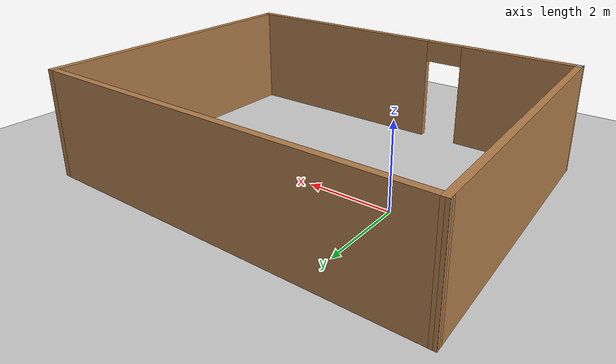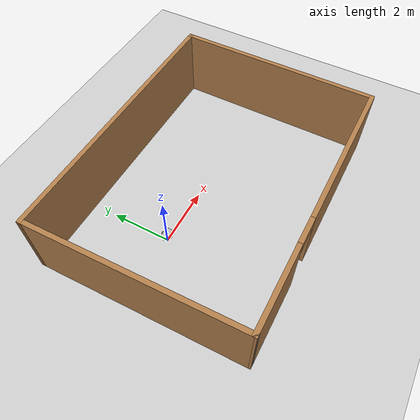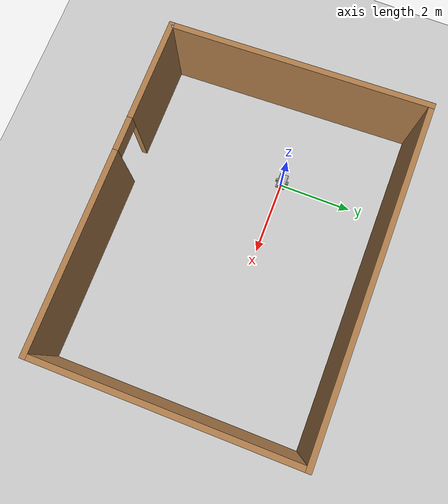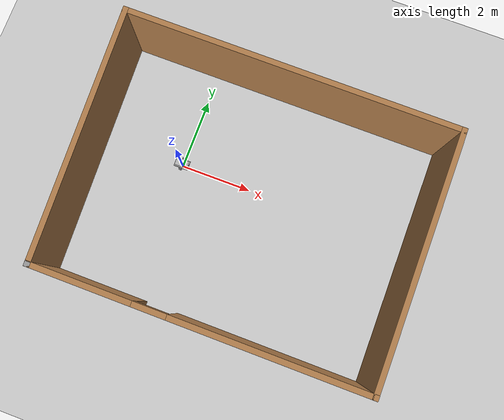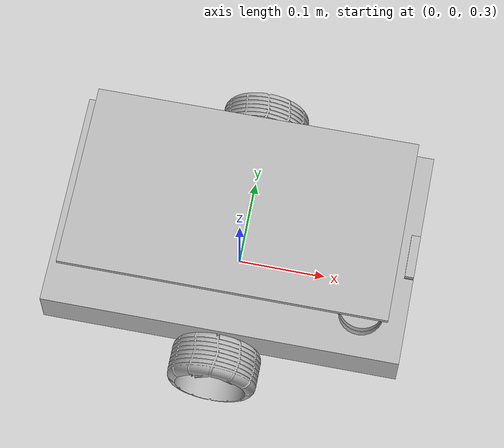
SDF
<?xml version="1.0" ?>
<sdf version="1.8">
  <world name="demo">
    <plugin
      filename="ignition-gazebo-physics-system"
      name="ignition::gazebo::systems::Physics">
    </plugin>
    <plugin
      filename="ignition-gazebo-sensors-system"
      name="ignition::gazebo::systems::Sensors">
      <render_engine>ogre2</render_engine>
    </plugin>

    <plugin
      filename="ignition-gazebo-scene-broadcaster-system"
      name="ignition::gazebo::systems::SceneBroadcaster">
    </plugin>
    <plugin
      filename="ignition-gazebo-user-commands-system"
      name="ignition::gazebo::systems::UserCommands">
    </plugin>
    <plugin
      filename="BasicSystem"
      name="ros_gz_example_gazebo::BasicSystem">
    </plugin>
    <plugin
      filename="FullSystem"
      name="ros_gz_example_gazebo::FullSystem">
    </plugin>

    <light name="sun" type="directional">
      <cast_shadows>true</cast_shadows>
      <pose>0 0 10 0 0 0</pose>
      <diffuse>0.8 0.8 0.8 1</diffuse>
      <specular>0.2 0.2 0.2 1</specular>
      <attenuation>
        <range>1000</range>
        <constant>0.9</constant>
        <linear>0.01</linear>
        <quadratic>0.001</quadratic>
      </attenuation>
      <direction>-0.5 0.1 -0.9</direction>
    </light>

    <model name="ground_plane">
      <static>true</static>
      <link name="link">
        <collision name="collision">
          <geometry>
            <plane>
              <normal>0 0 1</normal>
              <size>100 100</size>
            </plane>
          </geometry>
        </collision>
        <visual name="visual">
          <geometry>
            <plane>
              <normal>0 0 1</normal>
              <size>100 100</size>
            </plane>
          </geometry>
          <material>
            <ambient>0.8 0.8 0.8 1</ambient>
            <diffuse>0.8 0.8 0.8 1</diffuse>
            <specular>0.8 0.8 0.8 1</specular>
          </material>
        </visual>
      </link>
    </model>

    <model name="load_250_v33">
      <self_collide>true</self_collide>
      <pose>0 0 0.35 0 0 0</pose>
      <include merge="true">
        <uri>package://load_250_description/models/load_250</uri>
      </include>

      <plugin
        filename="ignition-gazebo-joint-state-publisher-system"
        name="ignition::gazebo::systems::JointStatePublisher">
      </plugin>

      <plugin
        filename="ignition-gazebo-pose-publisher-system"
        name="ignition::gazebo::systems::PosePublisher">
        <publish_link_pose>true</publish_link_pose>
        <use_pose_vector_msg>true</use_pose_vector_msg>
        <static_publisher>true</static_publisher>
        <static_update_frequency>1</static_update_frequency>
      </plugin>

      <plugin
        filename="ignition-gazebo-odometry-publisher-system"
        name="ignition::gazebo::systems::OdometryPublisher">
        <odom_frame>load_250_v33/odom</odom_frame>
        <robot_base_frame>load_250_v33</robot_base_frame>
      </plugin>
    </model>

  <model name="square">
    <pose>2.06866 -0.545 0 0 -0 0</pose>
    <link name='Wall_0'>
      <pose>0.126343 -3.425 0 0 -0 0</pose>
      <visual name='Wall_0_Visual_0'>
        <pose>-3.11467 0 1.25 0 -0 0</pose>
        <geometry>
          <box>
            <size>2.77067 0.15 2.5</size>
          </box>
        </geometry>
        <material>
          <script>
            <uri>file://media/materials/scripts/gazebo.material</uri>
            <name>Gazebo/Wood</name>
          </script>
          <ambient>1 1 1 1</ambient>
        </material>
        <meta>
          <layer>0</layer>
        </meta>
      </visual>
      <collision name='Wall_0_Collision_0'>
        <geometry>
          <box>
            <size>2.77067 0.15 2.5</size>
          </box>
        </geometry>
        <pose>-3.11467 0 1.25 0 -0 0</pose>
      </collision>
      <visual name='Wall_0_Visual_1'>
        <pose>1.83533 0 1.25 0 -0 0</pose>
        <geometry>
          <box>
            <size>5.32933 0.15 2.5</size>
          </box>
        </geometry>
        <material>
          <script>
            <uri>file://media/materials/scripts/gazebo.material</uri>
            <name>Gazebo/Wood</name>
          </script>
          <ambient>1 1 1 1</ambient>
        </material>
        <meta>
          <layer>0</layer>
        </meta>
      </visual>
      <collision name='Wall_0_Collision_1'>
        <geometry>
          <box>
            <size>5.32933 0.15 2.5</size>
          </box>
        </geometry>
        <pose>1.83533 0 1.25 0 -0 0</pose>
      </collision>
      <visual name='Wall_0_Visual_2'>
        <pose>-1.27933 0 2.25 0 -0 0</pose>
        <geometry>
          <box>
            <size>0.9 0.15 0.5</size>
          </box>
        </geometry>
        <material>
          <script>
            <uri>file://media/materials/scripts/gazebo.material</uri>
            <name>Gazebo/Wood</name>
          </script>
          <ambient>1 1 1 1</ambient>
        </material>
        <meta>
          <layer>0</layer>
        </meta>
      </visual>
      <collision name='Wall_0_Collision_2'>
        <geometry>
          <box>
            <size>0.9 0.15 0.5</size>
          </box>
        </geometry>
        <pose>-1.27933 0 2.25 0 -0 0</pose>
      </collision>
    </link>
    <link name='Wall_4'>
      <collision name='Wall_4_Collision'>
        <geometry>
          <box>
            <size>7 0.15 2.5</size>
          </box>
        </geometry>
        <pose>0 0 1.25 0 -0 0</pose>
      </collision>
      <visual name='Wall_4_Visual'>
        <pose>0 0 1.25 0 -0 0</pose>
        <geometry>
          <box>
            <size>7 0.15 2.5</size>
          </box>
        </geometry>
        <material>
          <script>
            <uri>file://media/materials/scripts/gazebo.material</uri>
            <name>Gazebo/Wood</name>
          </script>
          <ambient>1 1 1 1</ambient>
        </material>
        <meta>
          <layer>0</layer>
        </meta>
      </visual>
      <pose>4.55134 0 0 0 -0 1.5708</pose>
    </link>
    <link name='Wall_5'>
      <collision name='Wall_5_Collision'>
        <geometry>
          <box>
            <size>9.25 0.15 2.5</size>
          </box>
        </geometry>
        <pose>0 0 1.25 0 -0 0</pose>
      </collision>
      <visual name='Wall_5_Visual'>
        <pose>0 0 1.25 0 -0 0</pose>
        <geometry>
          <box>
            <size>9.25 0.15 2.5</size>
          </box>
        </geometry>
        <material>
          <script>
            <uri>file://media/materials/scripts/gazebo.material</uri>
            <name>Gazebo/Wood</name>
          </script>
          <ambient>1 1 1 1</ambient>
        </material>
        <meta>
          <layer>0</layer>
        </meta>
      </visual>
      <pose>0.001343 3.425 0 0 -0 3.14159</pose>
    </link>
    <link name='Wall_6'>
      <collision name='Wall_6_Collision'>
        <geometry>
          <box>
            <size>7.00456 0.15 2.5</size>
          </box>
        </geometry>
        <pose>0 0 1.25 0 -0 0</pose>
      </collision>
      <visual name='Wall_6_Visual'>
        <pose>0 0 1.25 0 -0 0</pose>
        <geometry>
          <box>
            <size>7.00456 0.15 2.5</size>
          </box>
        </geometry>
        <material>
          <script>
            <uri>file://media/materials/scripts/gazebo.material</uri>
            <name>Gazebo/Wood</name>
          </script>
          <ambient>1 0.764706 0.305882 1</ambient>
        </material>
        <meta>
          <layer>0</layer>
        </meta>
      </visual>
      <pose>-4.42366 0 0 0 -0 -1.53432</pose>
    </link>
    <link name='Wall_7'>
      <collision name='Wall_7_Collision'>
        <geometry>
          <box>
            <size>0.15 0.15 2.5</size>
          </box>
        </geometry>
        <pose>0 0 1.25 0 -0 0</pose>
      </collision>
      <visual name='Wall_7_Visual'>
        <pose>0 0 1.25 0 -0 0</pose>
        <geometry>
          <box>
            <size>0.15 0.15 2.5</size>
          </box>
        </geometry>
        <material>
          <script>
            <uri>file://media/materials/scripts/gazebo.material</uri>
            <name>Gazebo/Grey</name>
          </script>
          <ambient>1 1 1 1</ambient>
        </material>
        <meta>
          <layer>0</layer>
        </meta>
      </visual>
      <pose>-4.29866 -3.425 0 0 -0 0</pose>
    </link>
    <static>1</static>
  </model>
  </world>
</sdf>

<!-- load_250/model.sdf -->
<sdf version="1.9">
  <model name="load_250_v33">
    <link name="base_link">
      <inertial>
        <mass>0.0001</mass>
        <inertia>
          <ixx>1e-09</ixx>
          <ixy>0</ixy>
          <ixz>0</ixz>
          <iyy>1e-09</iyy>
          <iyz>0</iyz>
          <izz>1e-09</izz>
        </inertia>
      </inertial>
    </link>

    <link name="froller_1">
      <pose relative_to="__model__">0.175 0.0 -0.03 0.0 -0.0 0.0</pose>
      <inertial>
        <mass>0.2630560248605853</mass>
        <inertia>
          <ixx>4.20889639776937e-05</ixx>
          <ixy>0.0</ixy>
          <ixz>2.168404344971009e-19</ixz>
          <iyy>4.20889639776937e-05</iyy>
          <iyz>0.0</iyz>
          <izz>4.20889639776937e-05</izz>
        </inertia>
      </inertial>
      <visual name="froller_1__froller_visual">
        <geometry>
          <mesh>
            <scale>0.01 0.01 0.01</scale>
            <uri>meshes/froller_1/froller_visual.obj</uri>
          </mesh>
        </geometry>
      </visual>
      <collision name="froller_1__froller_collision">
        <pose relative_to="__model__">0.175 0.0 -0.03 -0.0 -1.5707963267948966 0</pose>
        <geometry>
          <sphere>
            <radius>0.02</radius>
          </sphere>
        </geometry>
        <surface>
          <friction>
            <torsional>
              <coefficient>0.0</coefficient>
            </torsional>
            <ode>
              <mu>0.0</mu>
              <mu2>0.0</mu2>
            </ode>
            <bullet>
              <friction>0.0</friction>
              <friction2>0.0</friction2>
              <rolling_friction>0.0</rolling_friction>
            </bullet>
          </friction>
        </surface>
      </collision>
    </link>
    <link name="imu_1">
      <pose relative_to="__model__">0.0 0.0 0.025 0.0 -0.0 0.0</pose>
      <inertial>
        <pose>0.0 0.0 0.010000000000000002 0.0 -0.0 0.0</pose>
        <mass>0.2355</mass>
        <inertia>
          <ixx>2.551249999999995e-05</ixx>
          <ixy>0.0</ixy>
          <ixz>0.0</ixz>
          <iyy>5.6912499999999954e-05</iyy>
          <iyz>0.0</iyz>
          <izz>6.672499999999997e-05</izz>
        </inertia>
      </inertial>
      <visual name="imu_1__imu_visual">
        <geometry>
          <mesh>
            <scale>0.01 0.01 0.01</scale>
            <uri>meshes/imu_1/imu_visual.obj</uri>
          </mesh>
        </geometry>
      </visual>
      <collision name="imu_1__imu_collision">
        <pose relative_to="__model__">0.0 0.0 0.035 -0.0 -1.5707963267948966 0</pose>
        <geometry>
          <box>
            <size>0.02 0.03 0.05</size>
          </box>
        </geometry>
      </collision>
    </link>
    <link name="broller_1">
      <pose relative_to="__model__">-0.175 0.0 -0.03 0.0 -0.0 0.0</pose>
      <inertial>
        <mass>0.2630560248605853</mass>
        <inertia>
          <ixx>4.20889639776937e-05</ixx>
          <ixy>0.0</ixy>
          <ixz>-2.168404344971009e-19</ixz>
          <iyy>4.20889639776937e-05</iyy>
          <iyz>0.0</iyz>
          <izz>4.20889639776937e-05</izz>
        </inertia>
      </inertial>
      <visual name="broller_1__broller_visual">
        <geometry>
          <mesh>
            <scale>0.01 0.01 0.01</scale>
            <uri>meshes/broller_1/broller_visual.obj</uri>
          </mesh>
        </geometry>
      </visual>
      <collision name="broller_1__broller_collision">
        <pose relative_to="__model__">-0.175 0.0 -0.03 -0.0 -1.5707963267948966 0</pose>
        <geometry>
          <box>
            <size>0.04 0.04 0.04</size>
          </box>
        </geometry>
        <surface>
          <friction>
            <torsional>
              <coefficient>0.0</coefficient>
            </torsional>
            <ode>
              <mu>0.0</mu>
              <mu2>0.0</mu2>
            </ode>
            <bullet>
              <friction>0.0</friction>
              <friction2>0.0</friction2>
              <rolling_friction>0.0</rolling_friction>
            </bullet>
          </friction>
        </surface>
      </collision>
    </link>
    <link name="platform_1">
      <pose relative_to="__model__">0.0 0.0 0.055 0.0 -0.0 6.123233995736766e-17</pose>
      <inertial>
        <pose>1.8256230444553304e-11 0.0 0.039618976470643864 0.0 -0.0 -6.123233995736766e-17</pose>
        <mass>11.533219999999998</mass>
        <inertia>
          <ixx>0.024765548801522416</ixx>
          <ixy>1.684427072887525e-11</ixy>
          <ixz>-5.238784181586978e-12</ixz>
          <iyy>0.05554422130152241</iyy>
          <iyz>1.448607473321317e-10</iyz>
          <izz>0.06986293283333335</izz>
        </inertia>
      </inertial>
      <visual name="platform_1__platform_visual">
        <geometry>
          <mesh>
            <scale>0.01 0.01 0.01</scale>
            <uri>meshes/platform_1/platform_visual.obj</uri>
          </mesh>
        </geometry>
      </visual>
      <collision name="platform_1__platform_collision">
        <pose relative_to="__model__">0.0 0.0 0.08850000629013424 -0.0 -1.5707963267948966 0</pose>
        <geometry>
          <box>
            <size>0.06700001258026848 0.21000000000000005 0.360000025160537</size>
          </box>
        </geometry>
      </collision>
    </link>
    <link name="camera_1">
      <pose relative_to="__model__">0.195 0.0 0.05199999999999999 0.0 -0.0 0.0</pose>
      <inertial>
        <pose>0.0 0.0 0.0025000000000000022 0.0 -0.0 0.0</pose>
        <mass>0.019624999999999997</mass>
        <inertia>
          <ixx>4.129427083333333e-06</ixx>
          <ixy>0.0</ixy>
          <ixz>0.0</ixz>
          <iyy>2.0442708333317638e-07</iyy>
          <iyz>0.0</iyz>
          <izz>4.252083333333343e-06</izz>
        </inertia>
      </inertial>
      <visual name="camera_1__camera_visual">
        <geometry>
          <mesh>
            <scale>0.01 0.01 0.01</scale>
            <uri>meshes/camera_1/camera_visual.obj</uri>
          </mesh>
        </geometry>
      </visual>
      <collision name="camera_1__camera_collision">
        <pose relative_to="__model__">0.195 0.0 0.05449999999999999 -0.0 -1.5707963267948966 0</pose>
        <geometry>
          <box>
            <size>0.005 0.05 0.01</size>
          </box>
        </geometry>
      </collision>
    </link>
    <link name="rwheel_1">
      <pose relative_to="__model__">0.0 -0.145 0.0 0.0 -0.0 1.0145104319789719e-51</pose>
      <inertial>
        <pose>-3.872152868763962e-07 -0.0050002387848986085 -5.898795480966115e-06 0.0 -0.0 -1.0145104319789719e-51</pose>
        <mass>1.0452977986041356</mass>
        <inertia>
          <ixx>0.0011276214981046917</ixx>
          <ixy>-3.9380700690467983e-10</ixy>
          <ixz>6.493558753287392e-08</ixz>
          <iyy>0.0019158393483540905</iyy>
          <iyz>-5.260724932004131e-09</iyz>
          <izz>0.0011276094071435289</izz>
        </inertia>
      </inertial>
      <visual name="rwheel_1__rwheel_visual">
        <geometry>
          <mesh>
            <scale>0.01 0.01 0.01</scale>
            <uri>meshes/rwheel_1/rwheel_visual.obj</uri>
          </mesh>
        </geometry>
      </visual>
      <collision name="rwheel_1__rwheel_collision">
        <pose relative_to="__model__">0.0 -0.15 0.0 -0.0 -1.5707963267948966 0</pose>
        <geometry>
          <sphere>
            <radius>0.05</radius>
          </sphere>
        </geometry>
        <surface>
          <friction>
            <torsional>
              <coefficient>0.0</coefficient>
            </torsional>
            <ode>
              <mu>0.8</mu>
              <mu2>0.8</mu2>
            </ode>
            <bullet>
              <friction>0.8</friction>
              <friction2>0.8</friction2>
              <rolling_friction>0.01</rolling_friction>
            </bullet>
          </friction>
        </surface>
      </collision>
    </link>
    <link name="flidar_1">
      <pose relative_to="__model__">0.15 -0.075 0.06199999999999999 0.0 -0.0 0.0</pose>
      <inertial>
        <pose>2.7755575615628914e-17 -1.3877787807814457e-17 0.0049999999999999975 0.0 -0.0 0.0</pose>
        <mass>0.1541343895667492</mass>
        <inertia>
          <ixx>2.536795161619306e-05</ixx>
          <ixy>-2.168404344971009e-19</ixy>
          <ixz>4.336808689942018e-19</ixz>
          <iyy>2.536795161619306e-05</iyy>
          <iyz>0.0</iyz>
          <izz>4.816699673960718e-05</izz>
        </inertia>
      </inertial>
      <visual name="flidar_1__flidar_visual">
        <geometry>
          <mesh>
            <scale>0.01 0.01 0.01</scale>
            <uri>meshes/flidar_1/flidar_visual.obj</uri>
          </mesh>
        </geometry>
      </visual>
      <collision name="flidar_1__flidar_collision">
        <pose relative_to="__model__">0.15 -0.075 0.06699999999999999 -0.0 -1.5707963267948966 0</pose>
        <geometry>
          <box>
            <size>0.01 0.05 0.05</size>
          </box>
        </geometry>
      </collision>
      <sensor name='gpu_lidar_1' type='gpu_lidar'>
        <pose>0.0 0.0 0.06699999999999999 0.0 -0.0 0.0</pose>
        <topic>scan</topic>
        <ignition_frame_id>load_250_v33/flidar_1</ignition_frame_id>
        <update_rate>10</update_rate>
        <lidar>
          <scan>
            <horizontal>
              <samples>270</samples>
              <resolution>1</resolution>
              <min_angle>-3.0</min_angle>
              <max_angle>1.396263</max_angle>
            </horizontal>
            <vertical>
              <samples>1</samples>
              <resolution>1</resolution>
              <min_angle>0.0</min_angle>
              <max_angle>0.0</max_angle>
            </vertical>
          </scan>
          <range>
            <min>0.1</min>
            <max>10.0</max>
            <resolution>0.01</resolution>
          </range>
        </lidar>
        <visualize>true</visualize>
      </sensor>
    </link>
    <link name="blidar_1">
      <pose relative_to="__model__">-0.15 0.075 0.06199999999999999 0.0 -0.0 0.0</pose>
      <inertial>
        <pose>0.0 0.0 0.0049999999999999975 0.0 -0.0 0.0</pose>
        <mass>0.15413438956674944</mass>
        <inertia>
          <ixx>2.536795161619306e-05</ixx>
          <ixy>0.0</ixy>
          <ixz>0.0</ixz>
          <iyy>2.5367951616194796e-05</iyy>
          <iyz>0.0</iyz>
          <izz>4.816699673960891e-05</izz>
        </inertia>
      </inertial>
      <visual name="blidar_1__blidar_visual">
        <geometry>
          <mesh>
            <scale>0.01 0.01 0.01</scale>
            <uri>meshes/blidar_1/blidar_visual.obj</uri>
          </mesh>
        </geometry>
      </visual>
      <collision name="blidar_1__blidar_collision">
        <pose relative_to="__model__">-0.15 0.075 0.06699999999999999 -0.0 -1.5707963267948966 0</pose>
        <geometry>
          <box>
            <size>0.01 0.05000000000000004 0.05000000000000002</size>
          </box>
        </geometry>
      </collision>
    </link>
    <link name="lwheel_1">
      <pose relative_to="__model__">0.0 0.145 0.0 -1.7931687772763235e-38 -0.0 -7.350647110176754e-36</pose>
      <inertial>
        <pose>-3.8721528699592e-07 0.0049997612151014 -5.898795481025863e-06 1.7931687772763235e-38 -1.3180950890745391e-73 7.350647110176754e-36</pose>
        <mass>1.0452977986041383</mass>
        <inertia>
          <ixx>0.0011276214981046986</ixx>
          <ixy>-3.938070089562201e-10</ixy>
          <ixz>6.493558752894794e-08</ixz>
          <iyy>0.0019158393483541083</iyy>
          <iyz>-5.260724930442202e-09</iyz>
          <izz>0.0011276094071435462</izz>
        </inertia>
      </inertial>
      <visual name="lwheel_1__lwheel_visual">
        <geometry>
          <mesh>
            <scale>0.01 0.01 0.01</scale>
            <uri>meshes/lwheel_1/lwheel_visual.obj</uri>
          </mesh>
        </geometry>
      </visual>
      <collision name="lwheel_1__lwheel_collision">
        <pose relative_to="__model__">0.0 0.15 0.0 -0.0 -1.5707963267948966 0</pose>
        <geometry>
          <sphere>
            <radius>0.05</radius>
          </sphere>
        </geometry>
        <surface>
          <friction>
            <torsional>
              <coefficient>0.0</coefficient>
            </torsional>
            <ode>
              <mu>0.8</mu>
              <mu2>0.8</mu2>
            </ode>
            <bullet>
              <friction>0.8</friction>
              <friction2>0.8</friction2>
              <rolling_friction>0.01</rolling_friction>
            </bullet>
          </friction>
        </surface>
      </collision>
    </link>
    <link name="main_body_1">
      <inertial>
        <pose>1.4462448403023515e-05 7.373652162995582e-17 0.03247477028451328 0.0 -0.0 0.0</pose>
        <mass>46.475965512430236</mass>
        <inertia>
          <ixx>0.2581412863064977</ixx>
          <ixy>0.004161628518543688</ixy>
          <ixz>-1.202255198884228e-05</ixz>
          <iyy>0.6234602310080568</iyy>
          <iyz>1.112902595487376e-16</iyz>
          <izz>0.820010763272547</izz>
        </inertia>
      </inertial>
      <visual name="main_body_1__main_body_visual">
        <geometry>
          <mesh>
            <scale>0.01 0.01 0.01</scale>
            <uri>meshes/main_body_1/main_body_visual.obj</uri>
          </mesh>
        </geometry>
      </visual>
      <collision name="main_body_1__main_body_collision">
        <pose relative_to="__model__">0.0 0.0 0.0425 -0.0 -1.5707963267948966 0</pose>
        <geometry>
          <box>
            <size>0.145 0.29 0.4</size>
          </box>
        </geometry>
      </collision>
    </link>
    <joint name="rigid_35" type="fixed">
      <pose relative_to="__model__">0.15 -0.075 0.06199999999999999 0.0 -0.0 0.0</pose>
      <parent>main_body_1</parent>
      <child>flidar_1</child>
      <axis/>
    </joint>
    <joint name="slider_36" type="prismatic">
      <pose relative_to="__model__">0.0 0.0 0.055 0.0 -0.0 0.0</pose>
      <parent>main_body_1</parent>
      <child>platform_1</child>
      <axis>
        <xyz expressed_in="__model__">0.0 0.0 1.0</xyz>
        <limit>
          <lower>0.0</lower>
          <upper>0.055</upper>
        </limit>
      </axis>
    </joint>
    <joint name="rigid_37" type="fixed">
      <pose relative_to="__model__">0.0 0.0 0.025 0.0 -0.0 0.0</pose>
      <parent>main_body_1</parent>
      <child>imu_1</child>
      <axis/>
    </joint>
    <joint name="rigid_38" type="fixed">
      <pose relative_to="__model__">-0.175 0.0 -0.03 0.0 -0.0 0.0</pose>
      <parent>main_body_1</parent>
      <child>broller_1</child>
      <axis/>
    </joint>
    <joint name="rigid_39" type="fixed">
      <pose relative_to="__model__">0.175 0.0 -0.03 0.0 -0.0 0.0</pose>
      <parent>main_body_1</parent>
      <child>froller_1</child>
      <axis/>
    </joint>
    <joint name="rigid_40" type="fixed">
      <pose relative_to="__model__">-0.15 0.075 0.06199999999999999 0.0 -0.0 0.0</pose>
      <parent>main_body_1</parent>
      <child>blidar_1</child>
      <axis/>
    </joint>
    <joint name="rigid_41" type="fixed">
      <pose relative_to="__model__">0.195 0.0 0.05199999999999999 0.0 -0.0 0.0</pose>
      <parent>main_body_1</parent>
      <child>camera_1</child>
      <axis/>
    </joint>
    <joint name="revolute_42" type="revolute">
      <pose relative_to="__model__">0.0 -0.145 0.0 0.0 -0.0 0.0</pose>
      <parent>main_body_1</parent>
      <child>rwheel_1</child>
      <axis>
        <xyz expressed_in="__model__">0.0 1.0 -0.0</xyz>
      </axis>
    </joint>
    <joint name="revolute_43" type="revolute">
      <pose relative_to="__model__">0.0 0.145 0.0 0.0 -0.0 0.0</pose>
      <parent>main_body_1</parent>
      <child>lwheel_1</child>
      <axis>
        <xyz expressed_in="__model__">0.0 1.0 -0.0</xyz>
      </axis>
    </joint>
    <joint name="base_link_joint" type="fixed">
      <parent>base_link</parent>
      <child>main_body_1</child>
      <axis/>
    </joint>
    <plugin
      filename="ignition-gazebo-diff-drive-system"
      name="ignition::gazebo::systems::DiffDrive">
      <left_joint>revolute_43</left_joint>
      <right_joint>revolute_42</right_joint>
      <wheel_separation>0.3</wheel_separation>
      <wheel_radius>0.05</wheel_radius>
      <odom_publish_frequency>30</odom_publish_frequency>
      <max_linear_acceleration>2</max_linear_acceleration>
      <min_linear_acceleration>-1</min_linear_acceleration>
      <max_angular_acceleration>4</max_angular_acceleration>
      <min_angular_acceleration>-4</min_angular_acceleration>
      <max_linear_velocity>2.0</max_linear_velocity>
      <min_linear_velocity>-0.5</min_linear_velocity>
      <max_angular_velocity>3</max_angular_velocity>
      <min_angular_velocity>-1</min_angular_velocity>
    </plugin>
  </model>
</sdf>
